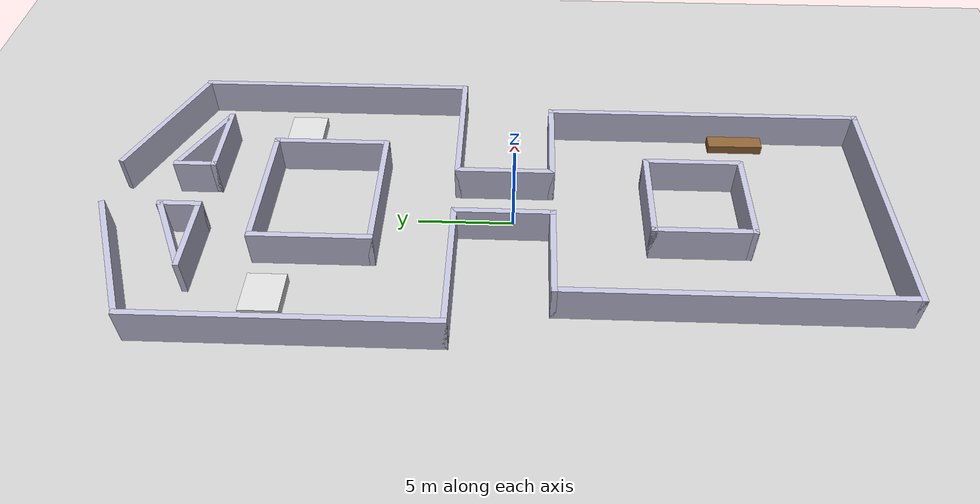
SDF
<sdf version="1.6">
 <world name="hospital_ward">
  <physics type="ode">
   <max_step_size>0.001</max_step_size>
   <real_time_factor>1</real_time_factor>
   <real_time_update_rate>1000</real_time_update_rate>
  </physics>
  <light name="sun" type="directional">
   <pose>0 0 10 0 0 0</pose>
   <diffuse>0.8 0.8 0.8 1</diffuse>
   <specular>0.2 0.2 0.2 1</specular>
   <attenuation>
    <range>1000</range>
    <constant>0.9</constant>
    <linear>0.01</linear>
    <quadratic>0.001</quadratic>
   </attenuation>
   <direction>-0.5 0.1 -0.9</direction>
  </light>
  <model name="ground_plane">
   <static>true</static>
   <link name="link">
    <collision name="col">
     <geometry><plane><normal>0 0 1</normal><size>100 100</size></plane></geometry>
    </collision>
    <visual name="vis">
     <geometry><plane><normal>0 0 1</normal><size>100 100</size></plane></geometry>
     <material><ambient>0.8 0.8 0.8 1</ambient><diffuse>0.8 0.8 0.8 1</diffuse></material>
    </visual>
   </link>
  </model>
  <model name="wall_1">
   <static>true</static>
   <pose>0.50 -19.00 1 0 0 0</pose>
   <link name="link">
    <collision name="col"><geometry><box><size>13.30 0.30 2.0</size></box></geometry></collision>
    <visual name="vis">
     <geometry><box><size>13.30 0.30 2.0</size></box></geometry>
     <material><ambient>0.75 0.75 0.85 1</ambient><diffuse>0.75 0.75 0.85 1</diffuse></material>
    </visual>
   </link>
  </model>
  <model name="wall_2">
   <static>true</static>
   <pose>-6.00 -10.50 1 0 0 0</pose>
   <link name="link">
    <collision name="col"><geometry><box><size>0.30 17.30 2.0</size></box></geometry></collision>
    <visual name="vis">
     <geometry><box><size>0.30 17.30 2.0</size></box></geometry>
     <material><ambient>0.75 0.75 0.85 1</ambient><diffuse>0.75 0.75 0.85 1</diffuse></material>
    </visual>
   </link>
  </model>
  <model name="wall_3">
   <static>true</static>
   <pose>7.00 -10.50 1 0 0 0</pose>
   <link name="link">
    <collision name="col"><geometry><box><size>0.30 17.30 2.0</size></box></geometry></collision>
    <visual name="vis">
     <geometry><box><size>0.30 17.30 2.0</size></box></geometry>
     <material><ambient>0.75 0.75 0.85 1</ambient><diffuse>0.75 0.75 0.85 1</diffuse></material>
    </visual>
   </link>
  </model>
  <model name="wall_4">
   <static>true</static>
   <pose>-3.50 -2.00 1 0 0 0</pose>
   <link name="link">
    <collision name="col"><geometry><box><size>5.30 0.30 2.0</size></box></geometry></collision>
    <visual name="vis">
     <geometry><box><size>5.30 0.30 2.0</size></box></geometry>
     <material><ambient>0.75 0.75 0.85 1</ambient><diffuse>0.75 0.75 0.85 1</diffuse></material>
    </visual>
   </link>
  </model>
  <model name="wall_5">
   <static>true</static>
   <pose>4.50 -2.00 1 0 0 0</pose>
   <link name="link">
    <collision name="col"><geometry><box><size>5.30 0.30 2.0</size></box></geometry></collision>
    <visual name="vis">
     <geometry><box><size>5.30 0.30 2.0</size></box></geometry>
     <material><ambient>0.75 0.75 0.85 1</ambient><diffuse>0.75 0.75 0.85 1</diffuse></material>
    </visual>
   </link>
  </model>
  <model name="wall_6">
   <static>true</static>
   <pose>-1.00 0.50 1 0 0 0</pose>
   <link name="link">
    <collision name="col"><geometry><box><size>0.30 5.30 2.0</size></box></geometry></collision>
    <visual name="vis">
     <geometry><box><size>0.30 5.30 2.0</size></box></geometry>
     <material><ambient>0.75 0.75 0.85 1</ambient><diffuse>0.75 0.75 0.85 1</diffuse></material>
    </visual>
   </link>
  </model>
  <model name="wall_7">
   <static>true</static>
   <pose>2.00 0.50 1 0 0 0</pose>
   <link name="link">
    <collision name="col"><geometry><box><size>0.30 5.30 2.0</size></box></geometry></collision>
    <visual name="vis">
     <geometry><box><size>0.30 5.30 2.0</size></box></geometry>
     <material><ambient>0.75 0.75 0.85 1</ambient><diffuse>0.75 0.75 0.85 1</diffuse></material>
    </visual>
   </link>
  </model>
  <model name="wall_8">
   <static>true</static>
   <pose>-4.50 3.00 1 0 0 0</pose>
   <link name="link">
    <collision name="col"><geometry><box><size>7.30 0.30 2.0</size></box></geometry></collision>
    <visual name="vis">
     <geometry><box><size>7.30 0.30 2.0</size></box></geometry>
     <material><ambient>0.75 0.75 0.85 1</ambient><diffuse>0.75 0.75 0.85 1</diffuse></material>
    </visual>
   </link>
  </model>
  <model name="wall_9">
   <static>true</static>
   <pose>5.50 3.00 1 0 0 0</pose>
   <link name="link">
    <collision name="col"><geometry><box><size>7.30 0.30 2.0</size></box></geometry></collision>
    <visual name="vis">
     <geometry><box><size>7.30 0.30 2.0</size></box></geometry>
     <material><ambient>0.75 0.75 0.85 1</ambient><diffuse>0.75 0.75 0.85 1</diffuse></material>
    </visual>
   </link>
  </model>
  <model name="wall_10">
   <static>true</static>
   <pose>-8.00 10.50 1 0 0 0</pose>
   <link name="link">
    <collision name="col"><geometry><box><size>0.30 15.30 2.0</size></box></geometry></collision>
    <visual name="vis">
     <geometry><box><size>0.30 15.30 2.0</size></box></geometry>
     <material><ambient>0.75 0.75 0.85 1</ambient><diffuse>0.75 0.75 0.85 1</diffuse></material>
    </visual>
   </link>
  </model>
  <model name="wall_11">
   <static>true</static>
   <pose>9.00 10.50 1 0 0 0</pose>
   <link name="link">
    <collision name="col"><geometry><box><size>0.30 15.30 2.0</size></box></geometry></collision>
    <visual name="vis">
     <geometry><box><size>0.30 15.30 2.0</size></box></geometry>
     <material><ambient>0.75 0.75 0.85 1</ambient><diffuse>0.75 0.75 0.85 1</diffuse></material>
    </visual>
   </link>
  </model>
  <model name="wall_12">
   <static>true</static>
   <pose>0.50 -12.00 1 0 0 0</pose>
   <link name="link">
    <collision name="col"><geometry><box><size>5.30 0.30 2.0</size></box></geometry></collision>
    <visual name="vis">
     <geometry><box><size>5.30 0.30 2.0</size></box></geometry>
     <material><ambient>0.75 0.75 0.85 1</ambient><diffuse>0.75 0.75 0.85 1</diffuse></material>
    </visual>
   </link>
  </model>
  <model name="wall_13">
   <static>true</static>
   <pose>-2.00 -9.50 1 0 0 0</pose>
   <link name="link">
    <collision name="col"><geometry><box><size>0.30 5.30 2.0</size></box></geometry></collision>
    <visual name="vis">
     <geometry><box><size>0.30 5.30 2.0</size></box></geometry>
     <material><ambient>0.75 0.75 0.85 1</ambient><diffuse>0.75 0.75 0.85 1</diffuse></material>
    </visual>
   </link>
  </model>
  <model name="wall_14">
   <static>true</static>
   <pose>3.00 -9.50 1 0 0 0</pose>
   <link name="link">
    <collision name="col"><geometry><box><size>0.30 5.30 2.0</size></box></geometry></collision>
    <visual name="vis">
     <geometry><box><size>0.30 5.30 2.0</size></box></geometry>
     <material><ambient>0.75 0.75 0.85 1</ambient><diffuse>0.75 0.75 0.85 1</diffuse></material>
    </visual>
   </link>
  </model>
  <model name="wall_15">
   <static>true</static>
   <pose>0.50 -7.00 1 0 0 0</pose>
   <link name="link">
    <collision name="col"><geometry><box><size>5.30 0.30 2.0</size></box></geometry></collision>
    <visual name="vis">
     <geometry><box><size>5.30 0.30 2.0</size></box></geometry>
     <material><ambient>0.75 0.75 0.85 1</ambient><diffuse>0.75 0.75 0.85 1</diffuse></material>
    </visual>
   </link>
  </model>
  <model name="wall_16">
   <static>true</static>
   <pose>0.50 7.00 1 0 0 0</pose>
   <link name="link">
    <collision name="col"><geometry><box><size>7.30 0.30 2.0</size></box></geometry></collision>
    <visual name="vis">
     <geometry><box><size>7.30 0.30 2.0</size></box></geometry>
     <material><ambient>0.75 0.75 0.85 1</ambient><diffuse>0.75 0.75 0.85 1</diffuse></material>
    </visual>
   </link>
  </model>
  <model name="wall_17">
   <static>true</static>
   <pose>0.50 13.00 1 0 0 0</pose>
   <link name="link">
    <collision name="col"><geometry><box><size>7.30 0.30 2.0</size></box></geometry></collision>
    <visual name="vis">
     <geometry><box><size>7.30 0.30 2.0</size></box></geometry>
     <material><ambient>0.75 0.75 0.85 1</ambient><diffuse>0.75 0.75 0.85 1</diffuse></material>
    </visual>
   </link>
  </model>
  <model name="wall_18">
   <static>true</static>
   <pose>-3.00 10.00 1 0 0 0</pose>
   <link name="link">
    <collision name="col"><geometry><box><size>0.30 6.30 2.0</size></box></geometry></collision>
    <visual name="vis">
     <geometry><box><size>0.30 6.30 2.0</size></box></geometry>
     <material><ambient>0.75 0.75 0.85 1</ambient><diffuse>0.75 0.75 0.85 1</diffuse></material>
    </visual>
   </link>
  </model>
  <model name="wall_19">
   <static>true</static>
   <pose>4.00 10.00 1 0 0 0</pose>
   <link name="link">
    <collision name="col"><geometry><box><size>0.30 6.30 2.0</size></box></geometry></collision>
    <visual name="vis">
     <geometry><box><size>0.30 6.30 2.0</size></box></geometry>
     <material><ambient>0.75 0.75 0.85 1</ambient><diffuse>0.75 0.75 0.85 1</diffuse></material>
    </visual>
   </link>
  </model>
  <model name="wall_20">
   <static>true</static>
   <pose>-3.00 16.00 1 0 0 0</pose>
   <link name="link">
    <collision name="col"><geometry><box><size>4.30 0.30 2.0</size></box></geometry></collision>
    <visual name="vis">
     <geometry><box><size>4.30 0.30 2.0</size></box></geometry>
     <material><ambient>0.75 0.75 0.85 1</ambient><diffuse>0.75 0.75 0.85 1</diffuse></material>
    </visual>
   </link>
  </model>
  <model name="wall_21">
   <static>true</static>
   <pose>4.00 16.00 1 0 0 0</pose>
   <link name="link">
    <collision name="col"><geometry><box><size>4.30 0.30 2.0</size></box></geometry></collision>
    <visual name="vis">
     <geometry><box><size>4.30 0.30 2.0</size></box></geometry>
     <material><ambient>0.75 0.75 0.85 1</ambient><diffuse>0.75 0.75 0.85 1</diffuse></material>
    </visual>
   </link>
  </model>
  <model name="wall_22">
   <static>true</static>
   <pose>-1.00 17.00 1 0 0 0</pose>
   <link name="link">
    <collision name="col"><geometry><box><size>0.30 2.30 2.0</size></box></geometry></collision>
    <visual name="vis">
     <geometry><box><size>0.30 2.30 2.0</size></box></geometry>
     <material><ambient>0.75 0.75 0.85 1</ambient><diffuse>0.75 0.75 0.85 1</diffuse></material>
    </visual>
   </link>
  </model>
  <model name="wall_23">
   <static>true</static>
   <pose>2.00 17.00 1 0 0 0</pose>
   <link name="link">
    <collision name="col"><geometry><box><size>0.30 2.30 2.0</size></box></geometry></collision>
    <visual name="vis">
     <geometry><box><size>0.30 2.30 2.0</size></box></geometry>
     <material><ambient>0.75 0.75 0.85 1</ambient><diffuse>0.75 0.75 0.85 1</diffuse></material>
    </visual>
   </link>
  </model>
  <model name="diag_1">
   <static>true</static>
   <pose>-3.00 17.00 1 0 0 0.4636</pose>
   <link name="link">
    <collision name="col"><geometry><box><size>4.47 0.30 2.0</size></box></geometry></collision>
    <visual name="vis">
     <geometry><box><size>4.47 0.30 2.0</size></box></geometry>
     <material><ambient>0.75 0.75 0.85 1</ambient><diffuse>0.75 0.75 0.85 1</diffuse></material>
    </visual>
   </link>
  </model>
  <model name="diag_2">
   <static>true</static>
   <pose>4.00 17.00 1 0 0 -0.4636</pose>
   <link name="link">
    <collision name="col"><geometry><box><size>4.47 0.30 2.0</size></box></geometry></collision>
    <visual name="vis">
     <geometry><box><size>4.47 0.30 2.0</size></box></geometry>
     <material><ambient>0.75 0.75 0.85 1</ambient><diffuse>0.75 0.75 0.85 1</diffuse></material>
    </visual>
   </link>
  </model>
  <model name="diag_3">
   <static>true</static>
   <pose>-4.50 19.50 1 0 0 0.4049</pose>
   <link name="link">
    <collision name="col"><geometry><box><size>7.62 0.30 2.0</size></box></geometry></collision>
    <visual name="vis">
     <geometry><box><size>7.62 0.30 2.0</size></box></geometry>
     <material><ambient>0.75 0.75 0.85 1</ambient><diffuse>0.75 0.75 0.85 1</diffuse></material>
    </visual>
   </link>
  </model>
  <model name="diag_4">
   <static>true</static>
   <pose>5.50 19.50 1 0 0 -0.4049</pose>
   <link name="link">
    <collision name="col"><geometry><box><size>7.62 0.30 2.0</size></box></geometry></collision>
    <visual name="vis">
     <geometry><box><size>7.62 0.30 2.0</size></box></geometry>
     <material><ambient>0.75 0.75 0.85 1</ambient><diffuse>0.75 0.75 0.85 1</diffuse></material>
    </visual>
   </link>
  </model>
  <model name="bench_1">
   <static>true</static>
   <pose>-5.50 -12.50 0.25 0 0 0</pose>
   <link name="link">
    <collision name="col"><geometry><box><size>1.0 3.0 0.5</size></box></geometry></collision>
    <visual name="vis">
     <geometry><box><size>1.0 3.0 0.5</size></box></geometry>
     <material><ambient>0.55 0.38 0.2 1</ambient><diffuse>0.55 0.38 0.2 1</diffuse></material>
    </visual>
   </link>
  </model>
  <model name="bench_2">
   <static>true</static>
   <pose>6.50 -12.50 0.25 0 0 0</pose>
   <link name="link">
    <collision name="col"><geometry><box><size>1.0 3.0 0.5</size></box></geometry></collision>
    <visual name="vis">
     <geometry><box><size>1.0 3.0 0.5</size></box></geometry>
     <material><ambient>0.55 0.38 0.2 1</ambient><diffuse>0.55 0.38 0.2 1</diffuse></material>
    </visual>
   </link>
  </model>
  <model name="gurney_1">
   <pose>-5.50 12.00 0 0 0 0</pose>
   <static>false</static>
   <link name="link">
    <inertial>
     <mass>5.0</mass>
     <inertia><ixx>0.1</ixx><ixy>0</ixy><ixz>0</ixz><iyy>0.1</iyy><iyz>0</iyz><izz>0.1</izz></inertia>
    </inertial>
    <collision name="collision">
     <geometry><box><size>2.3 2.0 0.60</size></box></geometry>
     <pose>0 0 0.3 0 0 0</pose>
    </collision>
    <visual name="visual">
     <geometry><box><size>2.3 2.0 0.60</size></box></geometry>
     <pose>0 0 0.3 0 0 0</pose>
     <material><ambient>0.85 0.85 0.85 1</ambient><diffuse>0.85 0.85 0.85 1</diffuse></material>
    </visual>
   </link>
   <plugin name="gurney_1_move" filename="libgazebo_ros_planar_move.so">
    <ros><namespace>gurney_1</namespace></ros>
    <update_rate>50</update_rate>
    <publish_odom>false</publish_odom>
    <publish_odom_tf>false</publish_odom_tf>
   </plugin>
  </model>
  <model name="gurney_2">
   <pose>6.50 12.00 0 0 0 0</pose>
   <static>false</static>
   <link name="link">
    <inertial>
     <mass>5.0</mass>
     <inertia><ixx>0.1</ixx><ixy>0</ixy><ixz>0</ixz><iyy>0.1</iyy><iyz>0</iyz><izz>0.1</izz></inertia>
    </inertial>
    <collision name="collision">
     <geometry><box><size>2.3 2.0 0.60</size></box></geometry>
     <pose>0 0 0.3 0 0 0</pose>
    </collision>
    <visual name="visual">
     <geometry><box><size>2.3 2.0 0.60</size></box></geometry>
     <pose>0 0 0.3 0 0 0</pose>
     <material><ambient>0.85 0.85 0.85 1</ambient><diffuse>0.85 0.85 0.85 1</diffuse></material>
    </visual>
   </link>
   <plugin name="gurney_2_move" filename="libgazebo_ros_planar_move.so">
    <ros><namespace>gurney_2</namespace></ros>
    <update_rate>50</update_rate>
    <publish_odom>false</publish_odom>
    <publish_odom_tf>false</publish_odom_tf>
   </plugin>
  </model>
 </world>
</sdf>
